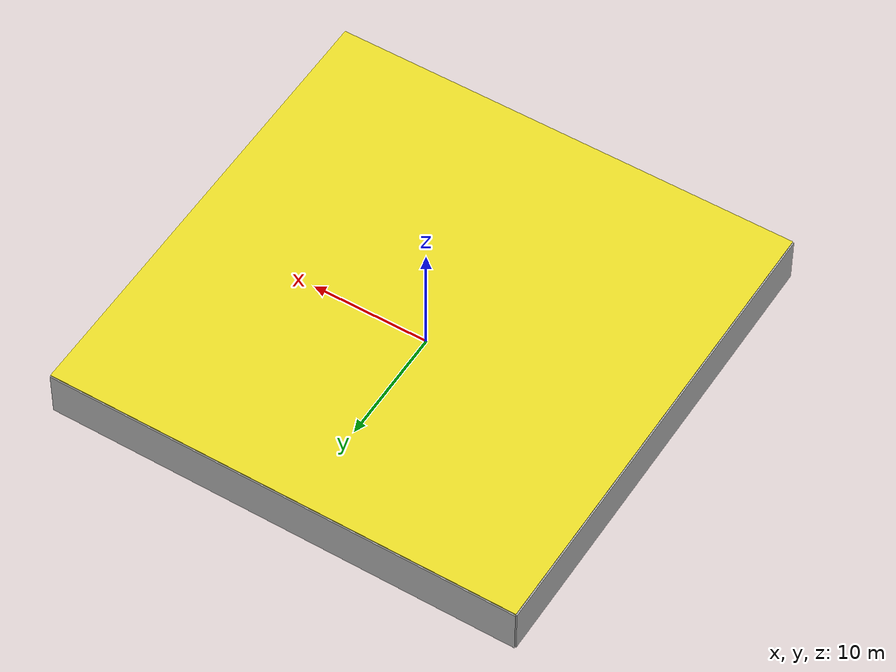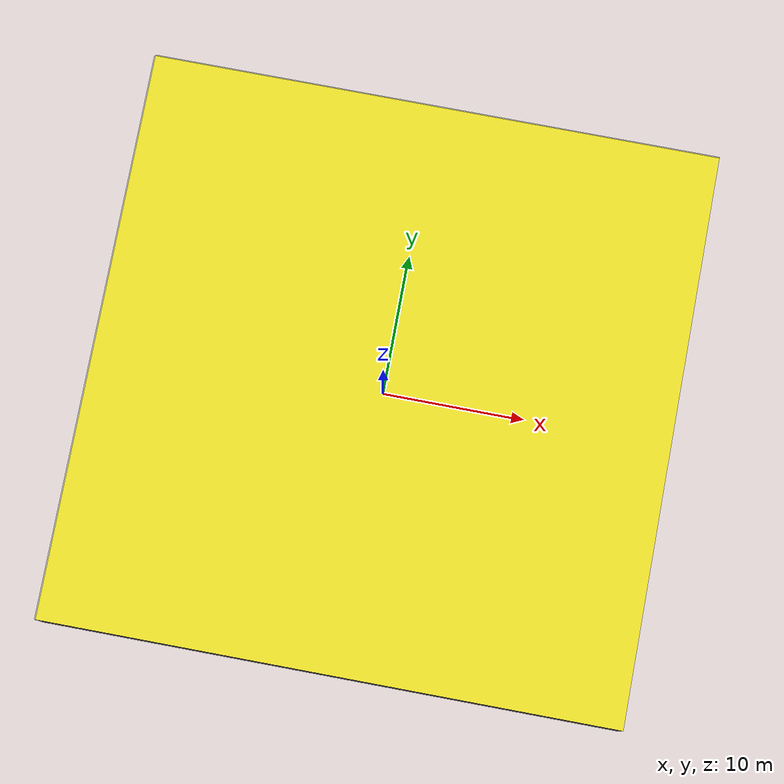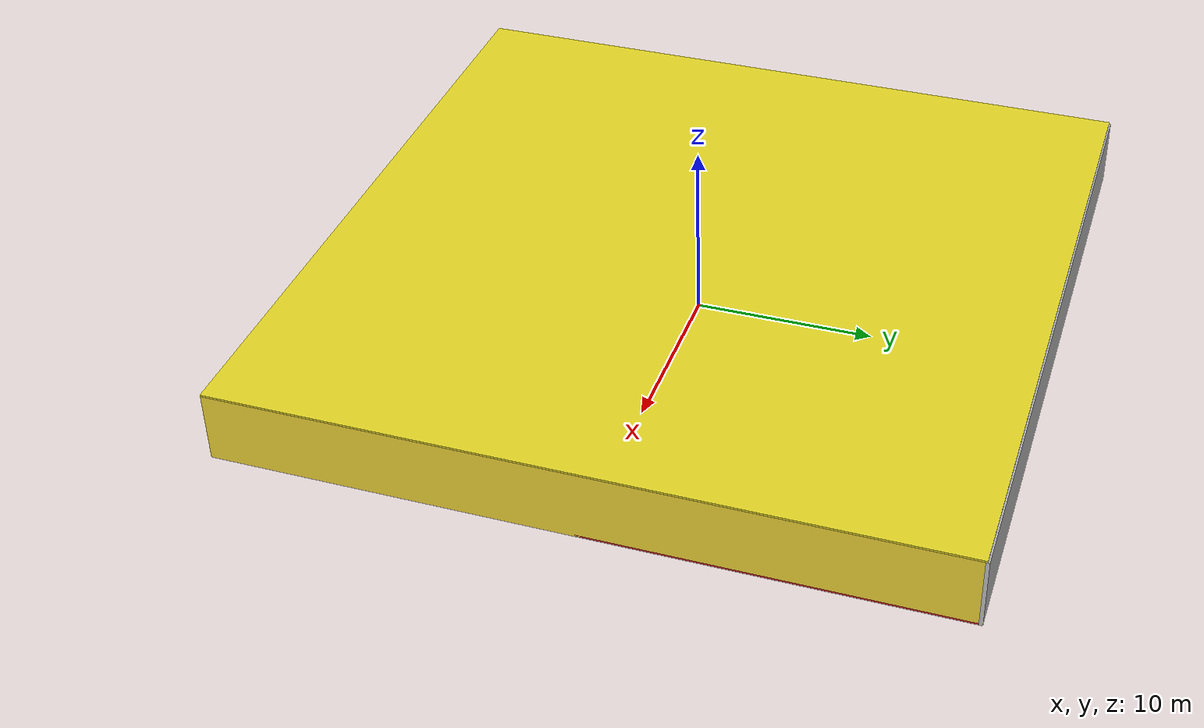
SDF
<sdf version="1.4">
 <world name="default">
  <physics type="ode">
   <max_step_size>0.001</max_step_size>
   <real_time_factor>1</real_time_factor>
   <real_time_update_rate>1000</real_time_update_rate>
   <gravity>0 0 -9.8</gravity>
  </physics>
  <scene><ambient>0.4 0.4 0.4 1</ambient><background>0.7 0.7 0.7 1</background><shadows>1</shadows></scene>
  <model name="Surrounding">
   <static>1</static>
   <link name="Ceiling">
    <collision name="Ceiling_Collision"><geometry><box><size>40 40 0.1</size></box></geometry></collision>
    <visual name="Ceiling_Visual">
     <geometry><box><size>40 40 0.1</size></box></geometry>
     <material>
      <script><uri>file://media/materials/scripts/gazebo.material</uri><name>Gazebo/YellowGlow</name></script>
     </material>
    </visual>
    <pose>0 0 4.05 0 0 0</pose>
   </link>
   <link name="Wall_South">
    <collision name="Wall_South_Collision">
     <geometry><box><size>40 0 4</size></box></geometry>
     <pose>0 0 2 0 -0 0</pose>
    </collision>
    <visual name="Wall_South_Visual">
     <pose>0 0 2 0 -0 0</pose>
     <geometry><box><size>40 0 4</size></box></geometry>
     <material>
      <script><uri>file://media/materials/scripts/gazebo.material</uri><name>Gazebo/DarkGrey</name></script>
     </material>
    </visual>
    <velocity_decay><linear>0</linear><angular>0</angular></velocity_decay>
    <pose>0 -20 0 0 -0 0</pose>
   </link>
   <link name="Wall_East">
    <collision name="Wall_21_Collision">
     <geometry><box><size>40 0 4</size></box></geometry>
     <pose>0 0 2 0 -0 0</pose>
    </collision>
    <visual name="Wall_21_Visual">
     <pose>0 0 2 0 -0 0</pose>
     <geometry><box><size>40 0 4</size></box></geometry>
     <material>
      <script><uri>file://media/materials/scripts/gazebo.material</uri><name>Gazebo/ZincYellow</name></script>
     </material>
    </visual>
    <velocity_decay><linear>0</linear><angular>0</angular></velocity_decay>
    <pose>20 0 0 0 -0 1.5708</pose>
   </link>
   <link name="Wall_North">
    <collision name="Wall_22_Collision">
     <geometry><box><size>40 0.2 4</size></box></geometry>
     <pose>0 0 2 0 -0 0</pose>
    </collision>
    <visual name="Wall_22_Visual">
     <pose>0 0 2 0 -0 0</pose>
     <geometry><box><size>40 0.2 4</size></box></geometry>
     <material>
      <script><uri>file://media/materials/scripts/gazebo.material</uri><name>Gazebo/LightOn</name></script>
     </material>
    </visual>
    <velocity_decay><linear>0</linear><angular>0</angular></velocity_decay>
    <pose>0 20 0 0 -0 0</pose>
   </link>
   <link name="Wall_West">
    <collision name="Wall_23_Collision">
     <geometry><box><size>40 0.2 4</size></box></geometry>
     <pose>0 0 2 0 -0 0</pose>
    </collision>
    <visual name="Wall_23_Visual">
     <pose>0 0 2 0 -0 0</pose>
     <geometry><box><size>40 0.2 4</size></box></geometry>
     <material>
      <script><uri>file://media/materials/scripts/gazebo.material</uri><name>Gazebo/LightOff</name></script>
     </material>
    </visual>
    <velocity_decay><linear>0</linear><angular>0</angular></velocity_decay>
    <pose>-20 0 0 0 0 -1.5708</pose>
   </link>
   <link name="Ground_link">
    <collision name="collision">
     <pose>0 0 .05 0 -0 0</pose>
     <geometry><box><size>40 40 0.1</size></box></geometry>
    </collision>
    <visual name="visual">
     <pose>0 0 .05 0 -0 0</pose>
     <geometry><box><size>40 40 0.1</size></box></geometry>
     <material>
      <script><uri>file://media/materials/scripts/gazebo.material</uri><name>Gazebo/RedGlow</name></script>
     </material>
    </visual>
   </link>
   <static>1</static>
  </model>
  <spherical_coordinates>
   <surface_model>EARTH_WGS84</surface_model>
   <latitude_deg>0</latitude_deg>
   <longitude_deg>0</longitude_deg>
   <elevation>0</elevation>
   <heading_deg>0</heading_deg>
  </spherical_coordinates>
  <light name="lightball_0" type="diffuse">
   <diffuse>0.8 0.8 0.8 1</diffuse>
   <specular>0.2 0.2 0.2 1</specular>
   <attenuation>
    <range>100</range>
    <constant>0.7</constant>
    <linear>0.01</linear>
    <quadratic>0.001</quadratic>
   </attenuation>
   <direction>-0.5 0.1 -0.9</direction>
   <pose>-10.4080468119 -15.6418367606 3.73081656154 0 0 0</pose>
  </light>
  <light name="lightball_1" type="diffuse">
   <diffuse>0.8 0.8 0.8 1</diffuse>
   <specular>0.2 0.2 0.2 1</specular>
   <attenuation>
    <range>100</range>
    <constant>0.7</constant>
    <linear>0.01</linear>
    <quadratic>0.001</quadratic>
   </attenuation>
   <direction>-0.5 0.1 -0.9</direction>
   <pose>5.36985381464 -1.38432635899 2.55540766735 0 0 0</pose>
  </light>
  <light name="lightball_2" type="diffuse">
   <diffuse>0.8 0.8 0.8 1</diffuse>
   <specular>0.2 0.2 0.2 1</specular>
   <attenuation>
    <range>100</range>
    <constant>0.7</constant>
    <linear>0.01</linear>
    <quadratic>0.001</quadratic>
   </attenuation>
   <direction>-0.5 0.1 -0.9</direction>
   <pose>2.79529891398 15.5042786104 3.46918650359 0 0 0</pose>
  </light>
  <light name="lightball_3" type="diffuse">
   <diffuse>0.8 0.8 0.8 1</diffuse>
   <specular>0.2 0.2 0.2 1</specular>
   <attenuation>
    <range>100</range>
    <constant>0.7</constant>
    <linear>0.01</linear>
    <quadratic>0.001</quadratic>
   </attenuation>
   <direction>-0.5 0.1 -0.9</direction>
   <pose>-17.5498124179 17.6511643147 2.1889731604 0 0 0</pose>
  </light>
  <light name="lightball_4" type="diffuse">
   <diffuse>0.8 0.8 0.8 1</diffuse>
   <specular>0.2 0.2 0.2 1</specular>
   <attenuation>
    <range>100</range>
    <constant>0.7</constant>
    <linear>0.01</linear>
    <quadratic>0.001</quadratic>
   </attenuation>
   <direction>-0.5 0.1 -0.9</direction>
   <pose>6.01966461803 6.85886521092 1.00902186231 0 0 0</pose>
  </light>
  <light name="lightball_5" type="diffuse">
   <diffuse>0.8 0.8 0.8 1</diffuse>
   <specular>0.2 0.2 0.2 1</specular>
   <attenuation>
    <range>100</range>
    <constant>0.7</constant>
    <linear>0.01</linear>
    <quadratic>0.001</quadratic>
   </attenuation>
   <direction>-0.5 0.1 -0.9</direction>
   <pose>3.81288601619 18.2583767351 2.01791767143 0 0 0</pose>
  </light>
  <light name="lightball_6" type="diffuse">
   <diffuse>0.8 0.8 0.8 1</diffuse>
   <specular>0.2 0.2 0.2 1</specular>
   <attenuation>
    <range>100</range>
    <constant>0.7</constant>
    <linear>0.01</linear>
    <quadratic>0.001</quadratic>
   </attenuation>
   <direction>-0.5 0.1 -0.9</direction>
   <pose>-6.84732381017 5.33079148153 3.09534201074 0 0 0</pose>
  </light>
  <light name="lightball_7" type="diffuse">
   <diffuse>0.8 0.8 0.8 1</diffuse>
   <specular>0.2 0.2 0.2 1</specular>
   <attenuation>
    <range>100</range>
    <constant>0.7</constant>
    <linear>0.01</linear>
    <quadratic>0.001</quadratic>
   </attenuation>
   <direction>-0.5 0.1 -0.9</direction>
   <pose>-0.205799760634 7.92692653024 1.81992039904 0 0 0</pose>
  </light>
  <light name="lightball_8" type="diffuse">
   <diffuse>0.8 0.8 0.8 1</diffuse>
   <specular>0.2 0.2 0.2 1</specular>
   <attenuation>
    <range>100</range>
    <constant>0.7</constant>
    <linear>0.01</linear>
    <quadratic>0.001</quadratic>
   </attenuation>
   <direction>-0.5 0.1 -0.9</direction>
   <pose>-17.6551283847 -12.3286706646 0.738002268842 0 0 0</pose>
  </light>
  <light name="lightball_9" type="diffuse">
   <diffuse>0.8 0.8 0.8 1</diffuse>
   <specular>0.2 0.2 0.2 1</specular>
   <attenuation>
    <range>100</range>
    <constant>0.7</constant>
    <linear>0.01</linear>
    <quadratic>0.001</quadratic>
   </attenuation>
   <direction>-0.5 0.1 -0.9</direction>
   <pose>-5.47803016838 -10.158639451 0.531094487092 0 0 0</pose>
  </light>
  <include><uri>model://cabinet</uri><pose>-18.4197009172 -5.51988892802 0 0 0 0.198589639453</pose></include>
  <include><uri>model://cabinet</uri><pose>-17.1453840137 -2.43674449372 0 0 0 2.63559493094</pose></include>
  <include>
   <uri>model://textured_shapes</uri>
   <pose>-16.3936272347 4.57725762046 0 0 0 1.91417727206</pose>
  </include>
  <include>
   <uri>model://robocup_3Dsim_goal</uri>
   <pose>-11.055468752 -6.0458864614 0 0 0 2.89671258915</pose>
  </include>
  <include><uri>model://cabinet</uri><pose>-11.2635708694 3.91091863202 0 0 0 2.60736118039</pose></include>
  <include><uri>model://table</uri><pose>-9.50978097715 -3.37785082169 0 0 0 1.27404429117</pose></include>
  <include>
   <uri>model://construction_cone</uri>
   <pose>-9.49593801487 0.225030433312 0 0 0 2.41923948596</pose>
  </include>
  <include><uri>model://cabinet</uri><pose>-8.35112972388 8.54668515785 0 0 0 1.33371272404</pose></include>
  <include>
   <uri>model://textured_shapes</uri>
   <pose>-4.41797009594 15.3645845811 0 0 0 1.57209382973</pose>
  </include>
  <include><uri>model://cabinet</uri><pose>-2.47807593994 -13.6424281426 0 0 0 0.802123067349</pose></include>
  <include><uri>model://cabinet</uri><pose>-1.91293046521 3.14030877267 0 0 0 2.96911143419</pose></include>
  <include>
   <uri>model://construction_cone</uri>
   <pose>0.162623588195 -7.58786684871 0 0 0 2.65364147666</pose>
  </include>
  <include>
   <uri>model://robocup_3Dsim_goal</uri>
   <pose>0.0525580590347 -4.6315376744 0 0 0 1.68194547461</pose>
  </include>
  <include><uri>model://cabinet</uri><pose>-0.310217634702 12.9150437357 0 0 0 2.96098733679</pose></include>
  <include>
   <uri>model://construction_cone</uri>
   <pose>7.42683686996 -14.0594631092 0 0 0 2.44319662726</pose>
  </include>
  <include><uri>model://cabinet</uri><pose>8.69420935273 4.5847755397 0 0 0 2.28534072666</pose></include>
  <include>
   <uri>model://textured_shapes</uri>
   <pose>13.5571952466 -10.7268588692 0 0 0 1.82894720608</pose>
  </include>
  <include>
   <uri>model://construction_cone</uri>
   <pose>12.9551841688 -5.33427477992 0 0 0 0.925777496776</pose>
  </include>
  <include>
   <uri>model://construction_cone</uri>
   <pose>11.4896325625 9.26426080134 0 0 0 0.0109064936072</pose>
  </include>
  <include>
   <uri>model://robocup_3Dsim_goal</uri>
   <pose>15.8772895265 0.202479572769 0 0 0 0.0839114256341</pose>
  </include>
  <include>
   <uri>model://robocup_3Dsim_goal</uri>
   <pose>18.5716887761 -4.94620065059 0 0 0 3.10957647314</pose>
  </include>
  <include>
   <uri>model://textured_shapes</uri>
   <pose>18.2897782064 14.6218295985 0 0 0 3.03435718679</pose>
  </include>
 </world>
</sdf>

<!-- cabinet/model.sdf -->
<sdf version="1.5">
  <model name="cabinet">
    <static>true</static>
    <link name="cabinet_bottom_plate">
      <inertial>
        <pose>0 0 -1 0 0 0</pose>
        <inertia>
          <ixx>2.050000</ixx>
          <ixy>0</ixy>
          <ixz>0</ixz>
          <iyy>2.050000</iyy>
          <iyz>0</iyz>
          <izz>2.050000</izz>
        </inertia>
        <mass>25.000000</mass>
      </inertial>
      <collision name="cabinet_bottom_plate_geom">
        <pose>0 0 0.010000 0 0 0</pose>
        <geometry>
          <box>
            <size>0.450000 0.450000 0.020000</size>
          </box>
        </geometry>
      </collision>
      <visual name="cabinet_bottom_plate_geom_visual">
        <pose>0 0 0.010000 0 0 0</pose>
        <geometry>
          <box>
            <size>0.450000 0.450000 0.020000</size>
          </box>
        </geometry>
        <material>
          <script>
            <uri>model://media/materials/scripts/gazebo.material</uri>
            <name>Gazebo/Wood</name>
          </script>
        </material>
      </visual>
      <collision name="cabinet_bottom_plate_geom_cabinet_back_plate">
        <pose>0.235000 0 0.510000 0 0 0</pose>
        <geometry>
          <box>
            <size>0.020000 0.450000 1.020000</size>
          </box>
        </geometry>
      </collision>
      <visual name="cabinet_bottom_plate_geom_cabinet_back_plate_visual">
        <pose>0.235000 0 0.510000 0 0 0</pose>
        <geometry>
          <box>
            <size>0.020000 0.450000 1.020000</size>
          </box>
        </geometry>
        <material>
          <script>
            <uri>model://media/materials/scripts/gazebo.material</uri>
            <name>Gazebo/Wood</name>
          </script>
        </material>
      </visual>
      <collision name="cabinet_bottom_plate_geom_cabinet_left_plate">
        <pose>0 0.235000 0.510000 0 0 0</pose>
        <geometry>
          <box>
            <size>0.450000 0.020000 1.020000</size>
          </box>
        </geometry>
      </collision>
      <visual name="cabinet_bottom_plate_geom_cabinet_left_plate_visual">
        <pose>0 0.235000 0.510000 0 0 0</pose>
        <geometry>
          <box>
            <size>0.450000 0.020000 1.020000</size>
          </box>
        </geometry>
        <material>
          <script>
            <uri>model://media/materials/scripts/gazebo.material</uri>
            <name>Gazebo/Wood</name>
          </script>
        </material>
      </visual>
      <collision name="cabinet_bottom_plate_geom_cabinet_middle_plate">
        <pose>0 0 0.510000 0 0 0</pose>
        <geometry>
          <box>
            <size>0.450000 0.450000 0.020000</size>
          </box>
        </geometry>
      </collision>
      <visual name="cabinet_bottom_plate_geom_cabinet_middle_plate_visual">
        <pose>0 0 0.510000 0 0 0</pose>
        <geometry>
          <box>
            <size>0.450000 0.450000 0.020000</size>
          </box>
        </geometry>
        <material>
          <script>
            <uri>model://media/materials/scripts/gazebo.material</uri>
            <name>Gazebo/Wood</name>
          </script>
        </material>
      </visual>
      <collision name="cabinet_bottom_plate_geom_cabinet_right_plate">
        <pose>0 -0.235000 0.510000 0 0 0</pose>
        <geometry>
          <box>
            <size>0.450000 0.020000 1.020000</size>
          </box>
        </geometry>
      </collision>
      <visual name="cabinet_bottom_plate_geom_cabinet_right_plate_visual">
        <pose>0 -0.235000 0.510000 0 0 0</pose>
        <geometry>
          <box>
            <size>0.450000 0.020000 1.020000</size>
          </box>
        </geometry>
        <material>
          <script>
            <uri>model://media/materials/scripts/gazebo.material</uri>
            <name>Gazebo/Wood</name>
          </script>
        </material>
      </visual>
      <collision name="cabinet_bottom_plate_geom_cabinet_top_plate">
        <pose>0 0 1.010000 0 0 0</pose>
        <geometry>
          <box>
            <size>0.450000 0.450000 0.020000</size>
          </box>
        </geometry>
      </collision>
      <visual name="cabinet_bottom_plate_geom_cabinet_top_plate_visual">
        <pose>0 0 1.010000 0 0 0</pose>
        <geometry>
          <box>
            <size>0.450000 0.450000 0.020000</size>
          </box>
        </geometry>
        <material>
          <script>
            <uri>model://media/materials/scripts/gazebo.material</uri>
            <name>Gazebo/Wood</name>
          </script>
        </material>
      </visual>
    </link>
  </model>
</sdf>

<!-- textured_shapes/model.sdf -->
<sdf version="1.6">
  <model name="textured_shapes">
    <pose>0 0 0.5 0 0 0</pose>
    <link name="box">
      <pose>0 -1.5 0 0 0 0</pose>
      <collision name="collision">
        <geometry>
          <box>
            <size>1 1 1</size>
          </box>
        </geometry>
      </collision>
      <visual name="visual">
        <geometry>
          <box>
            <size>1 1 1</size>
          </box>
        </geometry>
        <material>
          <script>
            <uri>model://../model_source/models/textured_shapes/materials/scripts</uri>
            <uri>model://../model_source/models/textured_shapes/materials/textures</uri>
            <name>TexturedShape/Squares</name>
          </script>
        </material>
      </visual>
    </link>
    <link name="sphere">
      <collision name="collision">
        <geometry>
          <sphere>
            <radius>0.5</radius>
          </sphere>
        </geometry>
      </collision>
      <visual name="visual">
        <geometry>
          <sphere>
            <radius>0.5</radius>
          </sphere>
        </geometry>
        <material>
          <script>
            <uri>model://../model_source/models/textured_shapes/materials/scripts</uri>
            <uri>model://../model_source/models/textured_shapes/materials/textures</uri>
            <name>TexturedShape/Squares</name>
          </script>
        </material>
      </visual>
    </link>
    <link name="cylinder">
      <pose>0 1.5 0 0 0 0</pose>
      <collision name="collision">
        <geometry>
          <cylinder>
            <radius>0.5</radius>
            <length>1</length>
          </cylinder>
        </geometry>
      </collision>
      <visual name="visual">
        <geometry>
          <cylinder>
            <radius>0.5</radius>
            <length>1</length>
          </cylinder>
        </geometry>
        <material>
          <script>
            <uri>model://../model_source/models/textured_shapes/materials/scripts</uri>
            <uri>model://../model_source/models/textured_shapes/materials/textures</uri>
            <name>TexturedShape/Squares</name>
          </script>
        </material>
      </visual>
    </link>
  </model>
</sdf>

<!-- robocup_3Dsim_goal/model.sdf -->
<sdf version="1.5">
  <model name="robocup_3d_goal">
    <static>true</static>
    <link name="left_post">
      <pose>0 1.05 0.45 0 0 0</pose>
      <collision name="collision">
        <geometry>
          <cylinder>
            <radius>0.05</radius>
            <length>0.9</length>
          </cylinder>
        </geometry>
      </collision>
      <visual name="visual">
        <geometry>
          <cylinder>
            <radius>0.05</radius>
            <length>0.9</length>
          </cylinder>
        </geometry>
        <material>
          <script>
            <uri>file://media/materials/scripts/gazebo.material</uri>
            <name>Gazebo/ZincYellow</name>
          </script>
        </material>
      </visual>
    </link>
    <link name="left_support_horiz_lower">
      <pose>0.30 1.05 0.01 0 0 0</pose>
      <collision name="collision">
        <geometry>
          <box>
            <size>0.50 0.02 0.02</size>
          </box>
        </geometry>
      </collision>
      <visual name="visual">
        <geometry>
          <box>
            <size>0.50 0.02 0.02</size>
          </box>
        </geometry>
        <material>
          <script>
            <uri>file://media/materials/scripts/gazebo.material</uri>
            <name>Gazebo/White</name>
          </script>
        </material>
      </visual>
    </link>
    <link name="left_support_horiz_upper">
      <pose>0.30 1.05 0.79 0 0 0</pose>
      <collision name="collision">
        <geometry>
          <box>
            <size>0.50 0.02 0.02</size>
          </box>
        </geometry>
      </collision>
      <visual name="visual">
        <geometry>
          <box>
            <size>0.50 0.02 0.02</size>
          </box>
        </geometry>
        <material>
          <script>
            <uri>file://media/materials/scripts/gazebo.material</uri>
            <name>Gazebo/White</name>
          </script>
        </material>
      </visual>
    </link>
    <link name="left_support_vertical">
      <pose>0.56 1.05 0.4 0 1.5708 0</pose>
      <collision name="collision">
        <geometry>
          <box>
            <size>0.80 0.02 0.02</size>
          </box>
        </geometry>
      </collision>
      <visual name="visual">
        <geometry>
          <box>
            <size>0.80 0.02 0.02</size>
          </box>
        </geometry>
        <material>
          <script>
            <uri>file://media/materials/scripts/gazebo.material</uri>
            <name>Gazebo/White</name>
          </script>
        </material>
      </visual>
    </link>
    <link name="right_support_horiz_lower">
      <pose>0.30 -1.05 0.01 0 0 0</pose>
      <collision name="collision">
        <geometry>
          <box>
            <size>0.50 0.02 0.02</size>
          </box>
        </geometry>
      </collision>
      <visual name="visual">
        <geometry>
          <box>
            <size>0.50 0.02 0.02</size>
          </box>
        </geometry>
        <material>
          <script>
            <uri>file://media/materials/scripts/gazebo.material</uri>
            <name>Gazebo/White</name>
          </script>
        </material>
      </visual>
    </link>
    <link name="right_support_horiz_upper">
      <pose>0.30 -1.05 0.79 0 0 0</pose>
      <collision name="collision">
        <geometry>
          <box>
            <size>0.50 0.02 0.02</size>
          </box>
        </geometry>
      </collision>
      <visual name="visual">
        <geometry>
          <box>
            <size>0.50 0.02 0.02</size>
          </box>
        </geometry>
        <material>
          <script>
            <uri>file://media/materials/scripts/gazebo.material</uri>
            <name>Gazebo/White</name>
          </script>
        </material>
      </visual>
    </link>
    <link name="right_support_vertical">
      <pose>0.56 -1.05 0.4 0 1.5708 0</pose>
      <collision name="collision">
        <geometry>
          <box>
            <size>0.80 0.02 0.02</size>
          </box>
        </geometry>
      </collision>
      <visual name="visual">
        <geometry>
          <box>
            <size>0.80 0.02 0.02</size>
          </box>
        </geometry>
        <material>
          <script>
            <uri>file://media/materials/scripts/gazebo.material</uri>
            <name>Gazebo/White</name>
          </script>
        </material>
      </visual>
    </link>
    <link name="center_support_horiz_lower">
      <pose>0.56 0 0.01 0 1.5708 0</pose>
      <collision name="collision">
        <geometry>
          <box>
            <size>0.02 2.08 0.02</size>
          </box>
        </geometry>
      </collision>
      <visual name="visual">
        <geometry>
          <box>
            <size>0.02 2.08 0.02</size>
          </box>
        </geometry>
        <material>
          <script>
            <uri>file://media/materials/scripts/gazebo.material</uri>
            <name>Gazebo/White</name>
          </script>
        </material>
      </visual>
    </link>
    <link name="center_support_horiz_upper">
      <pose>0.56 0 0.79 0 1.5708 0</pose>
      <collision name="collision">
        <geometry>
          <box>
            <size>0.02 2.08 0.02</size>
          </box>
        </geometry>
      </collision>
      <visual name="visual">
        <geometry>
          <box>
            <size>0.02 2.08 0.02</size>
          </box>
        </geometry>
        <material>
          <script>
            <uri>file://media/materials/scripts/gazebo.material</uri>
            <name>Gazebo/White</name>
          </script>
        </material>
      </visual>
    </link>
    <link name="right_post">
      <pose>0 -1.05 0.45 0 0 0</pose>
      <collision name="collision">
        <geometry>
          <cylinder>
            <radius>0.05</radius>
            <length>0.9</length>
          </cylinder>
        </geometry>
      </collision>
      <visual name="visual">
        <geometry>
          <cylinder>
            <radius>0.05</radius>
            <length>0.9</length>
          </cylinder>
        </geometry>
        <material>
          <script>
            <uri>file://media/materials/scripts/gazebo.material</uri>
            <name>Gazebo/ZincYellow</name>
          </script>
        </material>
      </visual>
    </link>
    <link name="crossbar">
      <pose>0 0 0.85 1.57 1.57 0</pose>
      <collision name="collision">
        <geometry>
          <cylinder>
            <radius>0.05</radius>
            <length>2.0</length>
          </cylinder>
        </geometry>
      </collision>
      <visual name="visual">
        <geometry>
          <cylinder>
            <radius>0.05</radius>
            <length>2.0</length>
          </cylinder>
        </geometry>
        <material>
          <script>
            <uri>file://media/materials/scripts/gazebo.material</uri>
            <name>Gazebo/ZincYellow</name>
          </script>
        </material>
      </visual>
    </link>
    <link name="center_net">
      <pose>0.56 0 0.40 0 0 0</pose>
      <collision name="collision">
        <geometry>
          <box>
            <size>0.01 2.1 0.80</size>
          </box>
        </geometry>
      </collision>
      <visual name="visual">
        <geometry>
          <box>
            <size>0.01 2.1 0.80</size>
          </box>
        </geometry>
        <material>
          <script>
            <uri>model://../model_source/models/robocup09_spl_field/materials/scripts/</uri>
            <uri>model://../model_source/models/robocup09_spl_field/materials/textures/</uri>
            <name>RoboCup/Net</name>
          </script>
        </material>
      </visual>
    </link>
    <link name="left_net">
      <pose>0.30 1.05 0.40 0 0 0</pose>
      <collision name="collision">
        <geometry>
          <box>
            <size>0.50 0.01 0.76</size>
          </box>
        </geometry>
      </collision>
      <visual name="visual">
        <geometry>
          <box>
            <size>0.50 0.01 0.76</size>
          </box>
        </geometry>
        <material>
          <script>
            <uri>model://../model_source/models/robocup09_spl_field/materials/scripts/</uri>
            <uri>model://../model_source/models/robocup09_spl_field/materials/textures/</uri>
            <name>RoboCup/Net</name>
          </script>
        </material>
      </visual>
    </link>
    <link name="right_net">
      <pose>0.30 -1.05 0.40 0 0 0</pose>
      <collision name="collision">
        <geometry>
          <box>
            <size>0.50 0.01 0.76</size>
          </box>
        </geometry>
      </collision>
      <visual name="visual">
        <geometry>
          <box>
            <size>0.50 0.01 0.76</size>
          </box>
        </geometry>
        <material>
          <script>
            <uri>model://../model_source/models/robocup09_spl_field/materials/scripts/</uri>
            <uri>model://../model_source/models/robocup09_spl_field/materials/textures/</uri>
            <name>RoboCup/Net</name>
          </script>
        </material>
      </visual>
    </link>
  </model>
</sdf>

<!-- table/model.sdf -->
<sdf version="1.5">
  <model name="table">
    <static>true</static>
    <link name="link">
      <collision name="surface">
        <pose>0 0 1.0 0 0 0</pose>
        <geometry>
          <box>
            <size>1.5 0.8 0.03</size>
          </box>
        </geometry>
        <surface>
          <friction>
            <ode>
              <mu>0.6</mu>
              <mu2>0.6</mu2>
            </ode>
          </friction>
        </surface>
      </collision>
      <visual name="visual1">
        <pose>0 0 1.0 0 0 0</pose>
        <geometry>
          <box>
            <size>1.5 0.8 0.03</size>
          </box>
        </geometry>
        <material>
          <script>
            <uri>model://media/materials/scripts/gazebo.material</uri>
            <name>Gazebo/Wood</name>
          </script>
        </material>
      </visual>
      <collision name="front_left_leg">
        <pose>0.68 0.38 0.5 0 0 0</pose>
        <geometry>
          <cylinder>
            <radius>0.02</radius>
            <length>1.0</length>
          </cylinder>
        </geometry>
      </collision>
      <visual name="front_left_leg">
        <pose>0.68 0.38 0.5 0 0 0</pose>
        <geometry>
          <cylinder>
            <radius>0.02</radius>
            <length>1.0</length>
          </cylinder>
        </geometry>
        <material>
          <script>
            <uri>model://media/materials/scripts/gazebo.material</uri>
            <name>Gazebo/Grey</name>
          </script>
        </material>
      </visual>
      <collision name="front_right_leg">
        <pose>0.68 -0.38 0.5 0 0 0</pose>
        <geometry>
          <cylinder>
            <radius>0.02</radius>
            <length>1.0</length>
          </cylinder>
        </geometry>
      </collision>
      <visual name="front_right_leg">
        <pose>0.68 -0.38 0.5 0 0 0</pose>
        <geometry>
          <cylinder>
            <radius>0.02</radius>
            <length>1.0</length>
          </cylinder>
        </geometry>
        <material>
          <script>
            <uri>model://media/materials/scripts/gazebo.material</uri>
            <name>Gazebo/Grey</name>
          </script>
        </material>
      </visual>
      <collision name="back_right_leg">
        <pose>-0.68 -0.38 0.5 0 0 0</pose>
        <geometry>
          <cylinder>
            <radius>0.02</radius>
            <length>1.0</length>
          </cylinder>
        </geometry>
      </collision>
      <visual name="back_right_leg">
        <pose>-0.68 -0.38 0.5 0 0 0</pose>
        <geometry>
          <cylinder>
            <radius>0.02</radius>
            <length>1.0</length>
          </cylinder>
        </geometry>
        <material>
          <script>
            <uri>model://media/materials/scripts/gazebo.material</uri>
            <name>Gazebo/Grey</name>
          </script>
        </material>
      </visual>
      <collision name="back_left_leg">
        <pose>-0.68 0.38 0.5 0 0 0</pose>
        <geometry>
          <cylinder>
            <radius>0.02</radius>
            <length>1.0</length>
          </cylinder>
        </geometry>
      </collision>
      <visual name="back_left_leg">
        <pose>-0.68 0.38 0.5 0 0 0</pose>
        <geometry>
          <cylinder>
            <radius>0.02</radius>
            <length>1.0</length>
          </cylinder>
        </geometry>
        <material>
          <script>
            <uri>model://media/materials/scripts/gazebo.material</uri>
            <name>Gazebo/Grey</name>
          </script>
        </material>
      </visual>
    </link>
  </model>
</sdf>

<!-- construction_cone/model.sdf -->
<sdf version="1.5">
  <model name="Construction Cone">
    <link name="link">
      <collision name="collision">
        <geometry>
          <mesh>
            <scale>10 10 10</scale>
            <uri>file://isr-testbed/construction_cone/meshes/construction_cone.dae</uri>
          </mesh>
        </geometry>
      </collision>
      <visual name="visual">
        <geometry>
          <mesh>
            <scale>10 10 10</scale>
            <uri>file://isr-testbed/construction_cone/meshes/construction_cone.dae</uri>
          </mesh>
        </geometry>
      </visual>
    </link>
  </model>
</sdf>
